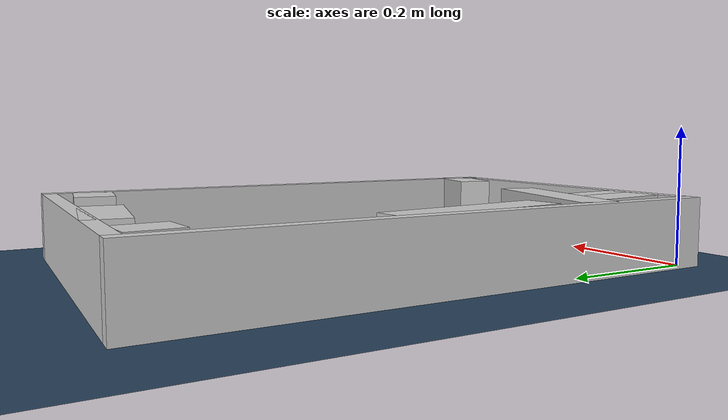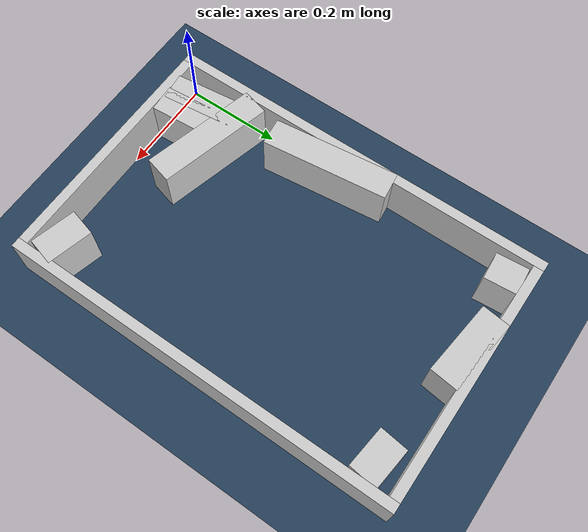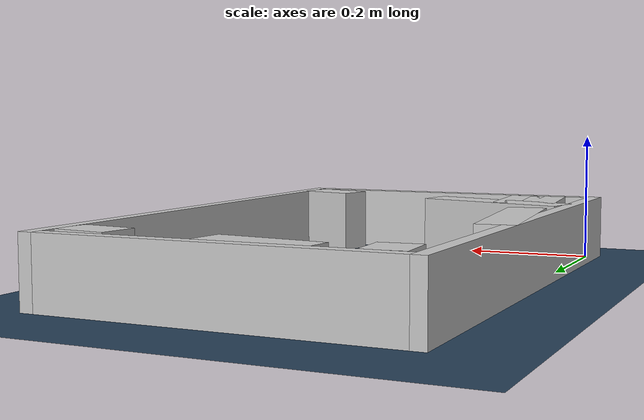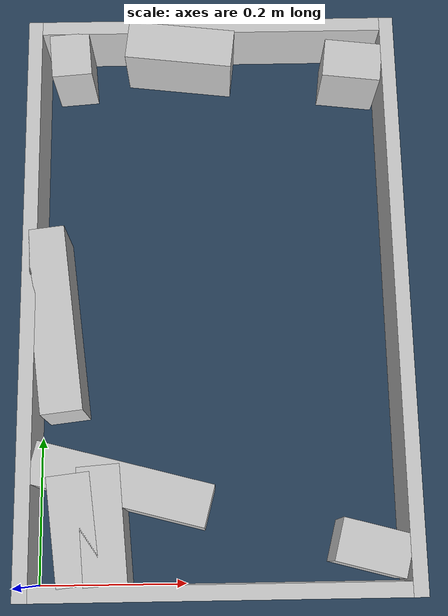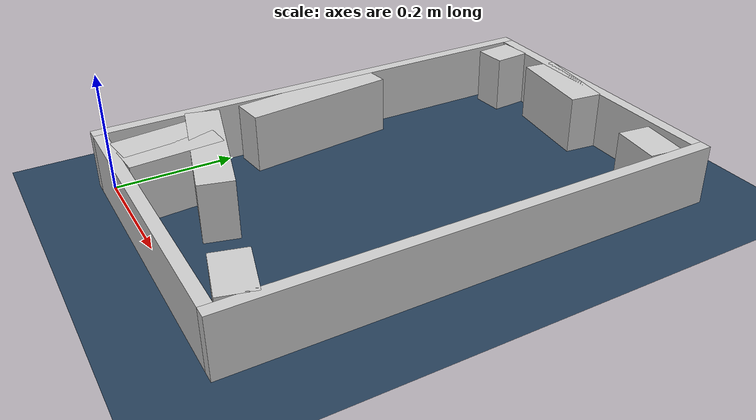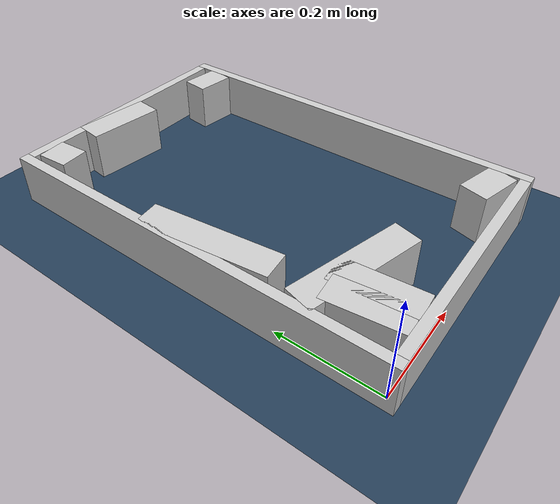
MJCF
<?xml version="1.0" ?>
<mujoco model="generated_real_template">
  <compiler angle="degree"/>
  <option timestep="0.002" integrator="implicitfast" iterations="100" cone="elliptic"/>
  <default>
    <geom density="1"/>
  </default>
  <asset>
    <texture builtin="gradient" height="3072" rgb1="0.3 0.5 0.7" rgb2="0 0 0" type="skybox" width="512"/>
    <texture builtin="checker" height="300" mark="edge" markrgb="0.8 0.8 0.8" name="groundplane" rgb1="0.2 0.3 0.4" rgb2="0.1 0.2 0.3" type="2d" width="300"/>
    <material name="groundplane" reflectance="0.2" texrepeat="5 5" texture="groundplane" texuniform="true"/>
  </asset>
  <worldbody>
    <light dir="0 0 -1" directional="true" pos="0 0 1.5"/>
    <geom name="floor" type="plane" condim="4" friction="0.5 0.005 0.001" material="groundplane" size="0 0 0.05"/>
    <body name="walls">
      <geom name="wall_boundary_left" type="box" condim="4" friction="1.0 0.005 0.0001" rgba="0.8 0.8 0.8 1" pos="-0.010000 0.387500 0.050000" euler="0 0 0.000000" size="0.010000 0.407500 0.050000"/>
      <geom name="wall_boundary_right" type="box" condim="4" friction="1.0 0.005 0.0001" rgba="0.8 0.8 0.8 1" pos="0.500000 0.387500 0.050000" euler="0 0 0.000000" size="0.010000 0.407500 0.050000"/>
      <geom name="wall_boundary_bottom" type="box" condim="4" friction="1.0 0.005 0.0001" rgba="0.8 0.8 0.8 1" pos="0.245000 -0.010000 0.050000" euler="0 0 0.000000" size="0.245000 0.010000 0.050000"/>
      <geom name="wall_boundary_top" type="box" condim="4" friction="1.0 0.005 0.0001" rgba="0.8 0.8 0.8 1" pos="0.245000 0.785000 0.050000" euler="0 0 0.000000" size="0.245000 0.010000 0.050000"/>
      <geom name="wall_inner_1_1" type="box" condim="4" friction="1.0 0.005 0.0001" rgba="0.8 0.8 0.8 1" pos="0.448737 0.728367 0.050000" euler="0 0 173.290256" size="0.041547 0.028500 0.050000"/>
      <geom name="wall_inner_1_2" type="box" condim="4" friction="1.0 0.005 0.0001" rgba="0.8 0.8 0.8 1" pos="0.199324 0.757710 0.050000" euler="0 0 173.290256" size="0.076895 0.028500 0.050000"/>
      <geom name="wall_inner_2_1" type="box" condim="4" friction="1.0 0.005 0.0001" rgba="0.8 0.8 0.8 1" pos="0.041368 0.742556 0.050000" euler="0 0 -85.551265" size="0.032542 0.028500 0.050000"/>
      <geom name="wall_inner_2_2" type="box" condim="4" friction="1.0 0.005 0.0001" rgba="0.8 0.8 0.8 1" pos="0.093215 0.076162 0.050000" euler="0 0 -85.551265" size="0.076392 0.028500 0.050000"/>
      <geom name="wall_inner_3_1" type="box" condim="4" friction="1.0 0.005 0.0001" rgba="0.8 0.8 0.8 1" pos="0.023396 0.350901 0.050000" euler="0 0 -83.298017" size="0.129300 0.028500 0.050000"/>
      <geom name="wall_inner_3_2" type="box" condim="4" friction="1.0 0.005 0.0001" rgba="0.8 0.8 0.8 1" pos="0.056319 0.070728 0.050000" euler="0 0 -83.298017" size="0.071215 0.028500 0.050000"/>
      <geom name="wall_inner_4_1" type="box" condim="4" friction="1.0 0.005 0.0001" rgba="0.8 0.8 0.8 1" pos="0.116657 0.127974 0.050000" euler="0 0 -14.658214" size="0.120581 0.028500 0.050000"/>
      <geom name="wall_inner_4_2" type="box" condim="4" friction="1.0 0.005 0.0001" rgba="0.8 0.8 0.8 1" pos="0.444571 0.042203 0.050000" euler="0 0 -14.658214" size="0.046957 0.028500 0.050000"/>
    </body>
  </worldbody>
</mujoco>
